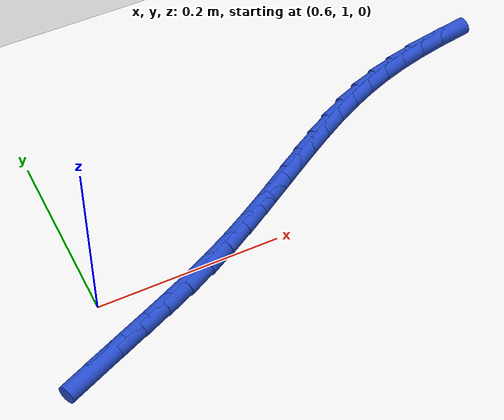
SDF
<sdf version="1.6">
 <world name="default">
  <model name="ground_plane">
   <static>1</static>
   <link name="link">
    <collision name="collision">
     <geometry><plane><normal>0 0 1</normal><size>100 100</size></plane></geometry>
     <surface><friction><ode><mu>100</mu><mu2>50</mu2></ode></friction></surface>
    </collision>
    <visual name="visual">
     <cast_shadows>0</cast_shadows>
     <geometry><plane><normal>0 0 1</normal><size>100 100</size></plane></geometry>
     <material>
      <script><uri>file://media/materials/scripts/gazebo.material</uri><name>Gazebo/WhiteGlow</name></script>
     </material>
    </visual>
   </link>
  </model>
  <model name="line">
   <link name="link_39">
    <pose>0.5692542051050209 0.9270630426631679 0.01 0 1.57 0.4100550604197094</pose>
    <collision name="collision">
     <geometry><cylinder><radius>0.01</radius><length>0.08</length></cylinder></geometry>
    </collision>
    <visual name="visual">
     <material>
      <script><name>Gazebo/Blue</name><uri>file://media/materials/scripts/gazebo.material</uri></script>
     </material>
     <geometry><cylinder><radius>0.01</radius><length>0.08</length></cylinder></geometry>
    </visual>
   </link>
   <link name="link_40">
    <pose>0.5999591275726504 0.940410370142921 0.01 0 1.57 0.4050584248168017</pose>
    <collision name="collision">
     <geometry><cylinder><radius>0.01</radius><length>0.08</length></cylinder></geometry>
    </collision>
    <visual name="visual">
     <material>
      <script><name>Gazebo/Blue</name><uri>file://media/materials/scripts/gazebo.material</uri></script>
     </material>
     <geometry><cylinder><radius>0.01</radius><length>0.08</length></cylinder></geometry>
    </visual>
   </link>
   <link name="link_41">
    <pose>0.6308934564967071 0.9536740417781961 0.01 0 1.57 0.4096146950289556</pose>
    <collision name="collision">
     <geometry><cylinder><radius>0.01</radius><length>0.08</length></cylinder></geometry>
    </collision>
    <visual name="visual">
     <material>
      <script><name>Gazebo/Blue</name><uri>file://media/materials/scripts/gazebo.material</uri></script>
     </material>
     <geometry><cylinder><radius>0.01</radius><length>0.08</length></cylinder></geometry>
    </visual>
   </link>
   <link name="link_42">
    <pose>0.6617180424000753 0.9670572505871848 0.01 0 1.57 0.42386305473692276</pose>
    <collision name="collision">
     <geometry><cylinder><radius>0.01</radius><length>0.08</length></cylinder></geometry>
    </collision>
    <visual name="visual">
     <material>
      <script><name>Gazebo/Blue</name><uri>file://media/materials/scripts/gazebo.material</uri></script>
     </material>
     <geometry><cylinder><radius>0.01</radius><length>0.08</length></cylinder></geometry>
    </visual>
   </link>
   <link name="link_43">
    <pose>0.6920937358056396 0.9807631895880785 0.01 0 1.57 0.44833794276709543</pose>
    <collision name="collision">
     <geometry><cylinder><radius>0.01</radius><length>0.08</length></cylinder></geometry>
    </collision>
    <visual name="visual">
     <material>
      <script><name>Gazebo/Blue</name><uri>file://media/materials/scripts/gazebo.material</uri></script>
     </material>
     <geometry><cylinder><radius>0.01</radius><length>0.08</length></cylinder></geometry>
    </visual>
   </link>
   <link name="link_44">
    <pose>0.7216813872362844 0.9949950517990682 0.01 0 1.57 0.48269421231455245</pose>
    <collision name="collision">
     <geometry><cylinder><radius>0.01</radius><length>0.08</length></cylinder></geometry>
    </collision>
    <visual name="visual">
     <material>
      <script><name>Gazebo/Blue</name><uri>file://media/materials/scripts/gazebo.material</uri></script>
     </material>
     <geometry><cylinder><radius>0.01</radius><length>0.08</length></cylinder></geometry>
    </visual>
   </link>
   <link name="link_45">
    <pose>0.7501762313350653 1.0099274928182826 0.01 0 1.57 0.5155748872746178</pose>
    <collision name="collision">
     <geometry><cylinder><radius>0.01</radius><length>0.08</length></cylinder></geometry>
    </collision>
    <visual name="visual">
     <material>
      <script><name>Gazebo/Blue</name><uri>file://media/materials/scripts/gazebo.material</uri></script>
     </material>
     <geometry><cylinder><radius>0.01</radius><length>0.08</length></cylinder></geometry>
    </visual>
   </link>
   <link name="link_46">
    <pose>0.7775968659393989 1.0254667899557224 0.01 0 1.57 0.539862307192583</pose>
    <collision name="collision">
     <geometry><cylinder><radius>0.01</radius><length>0.08</length></cylinder></geometry>
    </collision>
    <visual name="visual">
     <material>
      <script><name>Gazebo/Blue</name><uri>file://media/materials/scripts/gazebo.material</uri></script>
     </material>
     <geometry><cylinder><radius>0.01</radius><length>0.08</length></cylinder></geometry>
    </visual>
   </link>
   <link name="link_47">
    <pose>0.8041391830127351 1.0413720736139211 0.01 0 1.57 0.5548456937453472</pose>
    <collision name="collision">
     <geometry><cylinder><radius>0.01</radius><length>0.08</length></cylinder></geometry>
    </collision>
    <visual name="visual">
     <material>
      <script><name>Gazebo/Blue</name><uri>file://media/materials/scripts/gazebo.material</uri></script>
     </material>
     <geometry><cylinder><radius>0.01</radius><length>0.08</length></cylinder></geometry>
    </visual>
   </link>
   <link name="link_48">
    <pose>0.8300008945655305 1.0574009636304842 0.01 0 1.57 0.5599682646833017</pose>
    <collision name="collision">
     <geometry><cylinder><radius>0.01</radius><length>0.08</length></cylinder></geometry>
    </collision>
    <visual name="visual">
     <material>
      <script><name>Gazebo/Blue</name><uri>file://media/materials/scripts/gazebo.material</uri></script>
     </material>
     <geometry><cylinder><radius>0.01</radius><length>0.08</length></cylinder></geometry>
    </visual>
   </link>
   <link name="link_49">
    <pose>0.8553797126082417 1.0733110798430154 0.01 0 1.57 0.5547339546606506</pose>
    <collision name="collision">
     <geometry><cylinder><radius>0.01</radius><length>0.08</length></cylinder></geometry>
    </collision>
    <visual name="visual">
     <material>
      <script><name>Gazebo/Blue</name><uri>file://media/materials/scripts/gazebo.material</uri></script>
     </material>
     <geometry><cylinder><radius>0.01</radius><length>0.08</length></cylinder></geometry>
    </visual>
   </link>
   <link name="link_50">
    <pose>0.880473349151326 1.0888600420891215 0.01 0 1.57 0.5387042755099455</pose>
    <collision name="collision">
     <geometry><cylinder><radius>0.01</radius><length>0.08</length></cylinder></geometry>
    </collision>
    <visual name="visual">
     <material>
      <script><name>Gazebo/Blue</name><uri>file://media/materials/scripts/gazebo.material</uri></script>
     </material>
     <geometry><cylinder><radius>0.01</radius><length>0.08</length></cylinder></geometry>
    </visual>
   </link>
   <link name="link_51">
    <pose>0.9054795162052399 1.1038054702064057 0.01 0 1.57 0.5115280743949868</pose>
    <collision name="collision">
     <geometry><cylinder><radius>0.01</radius><length>0.08</length></cylinder></geometry>
    </collision>
    <visual name="visual">
     <material>
      <script><name>Gazebo/Blue</name><uri>file://media/materials/scripts/gazebo.material</uri></script>
     </material>
     <geometry><cylinder><radius>0.01</radius><length>0.08</length></cylinder></geometry>
    </visual>
   </link>
   <link name="link_52">
    <pose>0.9305959257804407 1.1179049840324746 0.01 0 1.57 0.4730127459231541</pose>
    <collision name="collision">
     <geometry><cylinder><radius>0.01</radius><length>0.08</length></cylinder></geometry>
    </collision>
    <visual name="visual">
     <material>
      <script><name>Gazebo/Blue</name><uri>file://media/materials/scripts/gazebo.material</uri></script>
     </material>
     <geometry><cylinder><radius>0.01</radius><length>0.08</length></cylinder></geometry>
    </visual>
   </link>
   <link name="link_53">
    <pose>0.9560202898873851 1.1309162034049327 0.01 0 1.57 0.4232397036403707</pose>
    <collision name="collision">
     <geometry><cylinder><radius>0.01</radius><length>0.08</length></cylinder></geometry>
    </collision>
    <visual name="visual">
     <material>
      <script><name>Gazebo/Blue</name><uri>file://media/materials/scripts/gazebo.material</uri></script>
     </material>
     <geometry><cylinder><radius>0.01</radius><length>0.08</length></cylinder></geometry>
    </visual>
   </link>
   <link name="link_54">
    <pose>0.9819503205365303 1.142596748161385 0.01 0 1.57 0.3629879177470212</pose>
    <collision name="collision">
     <geometry><cylinder><radius>0.01</radius><length>0.08</length></cylinder></geometry>
    </collision>
    <visual name="visual">
     <material>
      <script><name>Gazebo/Blue</name><uri>file://media/materials/scripts/gazebo.material</uri></script>
     </material>
     <geometry><cylinder><radius>0.01</radius><length>0.08</length></cylinder></geometry>
    </visual>
   </link>
   <link name="link_55">
    <pose>1.0085794972926763 1.152710987377695 0.01 0 1.57 0.3008922405248509</pose>
    <collision name="collision">
     <geometry><cylinder><radius>0.01</radius><length>0.08</length></cylinder></geometry>
    </collision>
    <visual name="visual">
     <material>
      <script><name>Gazebo/Blue</name><uri>file://media/materials/scripts/gazebo.material</uri></script>
     </material>
     <geometry><cylinder><radius>0.01</radius><length>0.08</length></cylinder></geometry>
    </visual>
   </link>
   <link name="link_56">
    <pose>1.0359815586094387 1.1612142344097363 0.01 0 1.57 0.2460496576232189</pose>
    <collision name="collision">
     <geometry><cylinder><radius>0.01</radius><length>0.08</length></cylinder></geometry>
    </collision>
    <visual name="visual">
     <material>
      <script><name>Gazebo/Blue</name><uri>file://media/materials/scripts/gazebo.material</uri></script>
     </material>
     <geometry><cylinder><radius>0.01</radius><length>0.08</length></cylinder></geometry>
    </visual>
   </link>
   <link name="link_57">
    <pose>1.0640965561212292 1.1682749853138592 0.01 0 1.57 0.19892541229311164</pose>
    <collision name="collision">
     <geometry><cylinder><radius>0.01</radius><length>0.08</length></cylinder></geometry>
    </collision>
    <visual name="visual">
     <material>
      <script><name>Gazebo/Blue</name><uri>file://media/materials/scripts/gazebo.material</uri></script>
     </material>
     <geometry><cylinder><radius>0.01</radius><length>0.08</length></cylinder></geometry>
    </visual>
   </link>
   <link name="link_58">
    <pose>1.092857509259093 1.1740729499976577 0.01 0 1.57 0.15933644931017643</pose>
    <collision name="collision">
     <geometry><cylinder><radius>0.01</radius><length>0.08</length></cylinder></geometry>
    </collision>
    <visual name="visual">
     <material>
      <script><name>Gazebo/Blue</name><uri>file://media/materials/scripts/gazebo.material</uri></script>
     </material>
     <geometry><cylinder><radius>0.01</radius><length>0.08</length></cylinder></geometry>
    </visual>
   </link>
  </model>
 </world>
</sdf>
